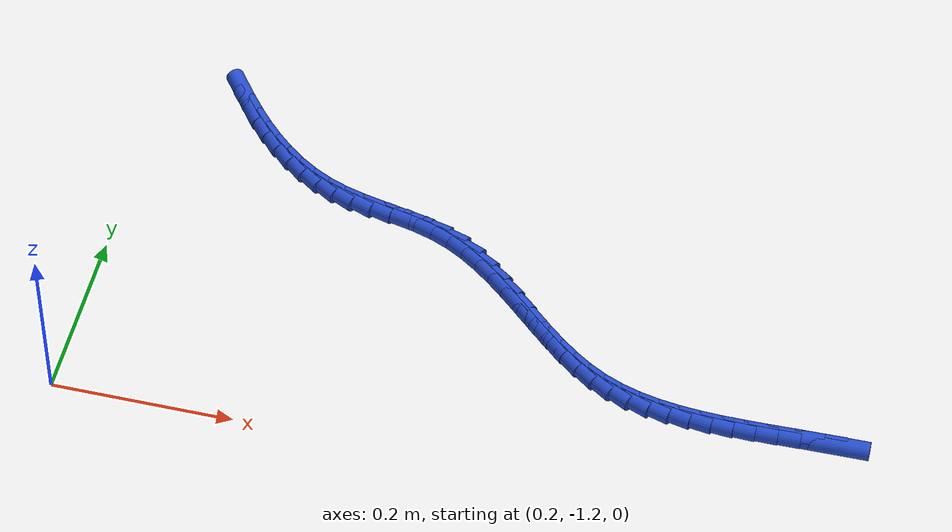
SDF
<sdf version="1.6">
 <world name="default">
  <model name="ground_plane">
   <static>1</static>
   <link name="link">
    <collision name="collision">
     <geometry><plane><normal>0 0 1</normal><size>100 100</size></plane></geometry>
     <surface><friction><ode><mu>100</mu><mu2>50</mu2></ode></friction></surface>
    </collision>
    <visual name="visual">
     <cast_shadows>0</cast_shadows>
     <geometry><plane><normal>0 0 1</normal><size>100 100</size></plane></geometry>
     <material>
      <script><uri>file://media/materials/scripts/gazebo.material</uri><name>Gazebo/WhiteGlow</name></script>
     </material>
    </visual>
   </link>
  </model>
  <model name="line">
   <link name="link_218">
    <pose>1.0204094631899965 -1.0928087757029417 0.01 0 1.57 0.00831767618906607</pose>
    <collision name="collision">
     <geometry><cylinder><radius>0.01</radius><length>0.08</length></cylinder></geometry>
    </collision>
    <visual name="visual">
     <material>
      <script><name>Gazebo/Blue</name><uri>file://media/materials/scripts/gazebo.material</uri></script>
     </material>
     <geometry><cylinder><radius>0.01</radius><length>0.08</length></cylinder></geometry>
    </visual>
   </link>
   <link name="link_219">
    <pose>0.9962284435389615 -1.0930099102327546 0.01 0 1.57 0.01894818879463786</pose>
    <collision name="collision">
     <geometry><cylinder><radius>0.01</radius><length>0.08</length></cylinder></geometry>
    </collision>
    <visual name="visual">
     <material>
      <script><name>Gazebo/Blue</name><uri>file://media/materials/scripts/gazebo.material</uri></script>
     </material>
     <geometry><cylinder><radius>0.01</radius><length>0.08</length></cylinder></geometry>
    </visual>
   </link>
   <link name="link_220">
    <pose>0.972057606819714 -1.093467958629842 0.01 0 1.57 0.0194105196252437</pose>
    <collision name="collision">
     <geometry><cylinder><radius>0.01</radius><length>0.08</length></cylinder></geometry>
    </collision>
    <visual name="visual">
     <material>
      <script><name>Gazebo/Blue</name><uri>file://media/materials/scripts/gazebo.material</uri></script>
     </material>
     <geometry><cylinder><radius>0.01</radius><length>0.08</length></cylinder></geometry>
    </visual>
   </link>
   <link name="link_221">
    <pose>0.9479837671473778 -1.0939353030622492 0.01 0 1.57 0.009586243072264293</pose>
    <collision name="collision">
     <geometry><cylinder><radius>0.01</radius><length>0.08</length></cylinder></geometry>
    </collision>
    <visual name="visual">
     <material>
      <script><name>Gazebo/Blue</name><uri>file://media/materials/scripts/gazebo.material</uri></script>
     </material>
     <geometry><cylinder><radius>0.01</radius><length>0.08</length></cylinder></geometry>
    </visual>
   </link>
   <link name="link_222">
    <pose>0.9240937386370752 -1.094164325698021 0.01 0 1.57 -0.010876941234964146</pose>
    <collision name="collision">
     <geometry><cylinder><radius>0.01</radius><length>0.08</length></cylinder></geometry>
    </collision>
    <visual name="visual">
     <material>
      <script><name>Gazebo/Blue</name><uri>file://media/materials/scripts/gazebo.material</uri></script>
     </material>
     <geometry><cylinder><radius>0.01</radius><length>0.08</length></cylinder></geometry>
    </visual>
   </link>
   <link name="link_223">
    <pose>0.9004743354039301 -1.0939074087052034 0.01 0 1.57 -0.042553437843695266</pose>
    <collision name="collision">
     <geometry><cylinder><radius>0.01</radius><length>0.08</length></cylinder></geometry>
    </collision>
    <visual name="visual">
     <material>
      <script><name>Gazebo/Blue</name><uri>file://media/materials/scripts/gazebo.material</uri></script>
     </material>
     <geometry><cylinder><radius>0.01</radius><length>0.08</length></cylinder></geometry>
    </visual>
   </link>
   <link name="link_224">
    <pose>0.8772123715630656 -1.0929169342518412 0.01 0 1.57 -0.08619464858166259</pose>
    <collision name="collision">
     <geometry><cylinder><radius>0.01</radius><length>0.08</length></cylinder></geometry>
    </collision>
    <visual name="visual">
     <material>
      <script><name>Gazebo/Blue</name><uri>file://media/materials/scripts/gazebo.material</uri></script>
     </material>
     <geometry><cylinder><radius>0.01</radius><length>0.08</length></cylinder></geometry>
    </visual>
   </link>
   <link name="link_225">
    <pose>0.8543946612296048 -1.0909452845059802 0.01 0 1.57 -0.14262853879168322</pose>
    <collision name="collision">
     <geometry><cylinder><radius>0.01</radius><length>0.08</length></cylinder></geometry>
    </collision>
    <visual name="visual">
     <material>
      <script><name>Gazebo/Blue</name><uri>file://media/materials/scripts/gazebo.material</uri></script>
     </material>
     <geometry><cylinder><radius>0.01</radius><length>0.08</length></cylinder></geometry>
    </visual>
   </link>
   <link name="link_226">
    <pose>0.8321080185186707 -1.0877448416356645 0.01 0 1.57 -0.21257310748730246</pose>
    <collision name="collision">
     <geometry><cylinder><radius>0.01</radius><length>0.08</length></cylinder></geometry>
    </collision>
    <visual name="visual">
     <material>
      <script><name>Gazebo/Blue</name><uri>file://media/materials/scripts/gazebo.material</uri></script>
     </material>
     <geometry><cylinder><radius>0.01</radius><length>0.08</length></cylinder></geometry>
    </visual>
   </link>
   <link name="link_227">
    <pose>0.8104392575453867 -1.083067987808941 0.01 0 1.57 -0.29633621166907026</pose>
    <collision name="collision">
     <geometry><cylinder><radius>0.01</radius><length>0.08</length></cylinder></geometry>
    </collision>
    <visual name="visual">
     <material>
      <script><name>Gazebo/Blue</name><uri>file://media/materials/scripts/gazebo.material</uri></script>
     </material>
     <geometry><cylinder><radius>0.01</radius><length>0.08</length></cylinder></geometry>
    </visual>
   </link>
   <link name="link_228">
    <pose>0.7894751924248757 -1.076667105193854 0.01 0 1.57 -0.3934090180678991</pose>
    <collision name="collision">
     <geometry><cylinder><radius>0.01</radius><length>0.08</length></cylinder></geometry>
    </collision>
    <visual name="visual">
     <material>
      <script><name>Gazebo/Blue</name><uri>file://media/materials/scripts/gazebo.material</uri></script>
     </material>
     <geometry><cylinder><radius>0.01</radius><length>0.08</length></cylinder></geometry>
    </visual>
   </link>
   <link name="link_229">
    <pose>0.7693026372722611 -1.0682945759584486 0.01 0 1.57 -0.499503116932192</pose>
    <collision name="collision">
     <geometry><cylinder><radius>0.01</radius><length>0.08</length></cylinder></geometry>
    </collision>
    <visual name="visual">
     <material>
      <script><name>Gazebo/Blue</name><uri>file://media/materials/scripts/gazebo.material</uri></script>
     </material>
     <geometry><cylinder><radius>0.01</radius><length>0.08</length></cylinder></geometry>
    </visual>
   </link>
   <link name="link_230">
    <pose>0.7499874267416878 -1.0577550866839307 0.01 0 1.57 -0.592296394537806</pose>
    <collision name="collision">
     <geometry><cylinder><radius>0.01</radius><length>0.08</length></cylinder></geometry>
    </collision>
    <visual name="visual">
     <material>
      <script><name>Gazebo/Blue</name><uri>file://media/materials/scripts/gazebo.material</uri></script>
     </material>
     <geometry><cylinder><radius>0.01</radius><length>0.08</length></cylinder></geometry>
    </visual>
   </link>
   <link name="link_231">
    <pose>0.7314292525624848 -1.0452675389874588 0.01 0 1.57 -0.6622489783305253</pose>
    <collision name="collision">
     <geometry><cylinder><radius>0.01</radius><length>0.08</length></cylinder></geometry>
    </collision>
    <visual name="visual">
     <material>
      <script><name>Gazebo/Blue</name><uri>file://media/materials/scripts/gazebo.material</uri></script>
     </material>
     <geometry><cylinder><radius>0.01</radius><length>0.08</length></cylinder></geometry>
    </visual>
   </link>
   <link name="link_232">
    <pose>0.7134487676900183 -1.03124788800884 0.01 0 1.57 -0.7107135219159986</pose>
    <collision name="collision">
     <geometry><cylinder><radius>0.01</radius><length>0.08</length></cylinder></geometry>
    </collision>
    <visual name="visual">
     <material>
      <script><name>Gazebo/Blue</name><uri>file://media/materials/scripts/gazebo.material</uri></script>
     </material>
     <geometry><cylinder><radius>0.01</radius><length>0.08</length></cylinder></geometry>
    </visual>
   </link>
   <link name="link_233">
    <pose>0.6958661430662091 -1.0161132906075296 0.01 0 1.57 -0.7392759008463121</pose>
    <collision name="collision">
     <geometry><cylinder><radius>0.01</radius><length>0.08</length></cylinder></geometry>
    </collision>
    <visual name="visual">
     <material>
      <script><name>Gazebo/Blue</name><uri>file://media/materials/scripts/gazebo.material</uri></script>
     </material>
     <geometry><cylinder><radius>0.01</radius><length>0.08</length></cylinder></geometry>
    </visual>
   </link>
   <link name="link_234">
    <pose>0.6785015496329766 -1.0002809036429823 0.01 0 1.57 -0.7491283999998812</pose>
    <collision name="collision">
     <geometry><cylinder><radius>0.01</radius><length>0.08</length></cylinder></geometry>
    </collision>
    <visual name="visual">
     <material>
      <script><name>Gazebo/Blue</name><uri>file://media/materials/scripts/gazebo.material</uri></script>
     </material>
     <geometry><cylinder><radius>0.01</radius><length>0.08</length></cylinder></geometry>
    </visual>
   </link>
   <link name="link_235">
    <pose>0.6611751583322409 -0.9841678839746527 0.01 0 1.57 -0.7408307619829201</pose>
    <collision name="collision">
     <geometry><cylinder><radius>0.01</radius><length>0.08</length></cylinder></geometry>
    </collision>
    <visual name="visual">
     <material>
      <script><name>Gazebo/Blue</name><uri>file://media/materials/scripts/gazebo.material</uri></script>
     </material>
     <geometry><cylinder><radius>0.01</radius><length>0.08</length></cylinder></geometry>
    </visual>
   </link>
   <link name="link_236">
    <pose>0.6437071401059226 -0.9681913884619964 0.01 0 1.57 -0.7142598537284502</pose>
    <collision name="collision">
     <geometry><cylinder><radius>0.01</radius><length>0.08</length></cylinder></geometry>
    </collision>
    <visual name="visual">
     <material>
      <script><name>Gazebo/Blue</name><uri>file://media/materials/scripts/gazebo.material</uri></script>
     </material>
     <geometry><cylinder><radius>0.01</radius><length>0.08</length></cylinder></geometry>
    </visual>
   </link>
   <link name="link_237">
    <pose>0.6259176658959416 -0.9527685739644679 0.01 0 1.57 -0.6686902081531628</pose>
    <collision name="collision">
     <geometry><cylinder><radius>0.01</radius><length>0.08</length></cylinder></geometry>
    </collision>
    <visual name="visual">
     <material>
      <script><name>Gazebo/Blue</name><uri>file://media/materials/scripts/gazebo.material</uri></script>
     </material>
     <geometry><cylinder><radius>0.01</radius><length>0.08</length></cylinder></geometry>
    </visual>
   </link>
   <link name="link_238">
    <pose>0.6076269066442178 -0.9383165973415224 0.01 0 1.57 -0.6030321208310914</pose>
    <collision name="collision">
     <geometry><cylinder><radius>0.01</radius><length>0.08</length></cylinder></geometry>
    </collision>
    <visual name="visual">
     <material>
      <script><name>Gazebo/Blue</name><uri>file://media/materials/scripts/gazebo.material</uri></script>
     </material>
     <geometry><cylinder><radius>0.01</radius><length>0.08</length></cylinder></geometry>
    </visual>
   </link>
   <link name="link_239">
    <pose>0.5886550332926719 -0.9252526154526151 0.01 0 1.57 -0.5163209300949088</pose>
    <collision name="collision">
     <geometry><cylinder><radius>0.01</radius><length>0.08</length></cylinder></geometry>
    </collision>
    <visual name="visual">
     <material>
      <script><name>Gazebo/Blue</name><uri>file://media/materials/scripts/gazebo.material</uri></script>
     </material>
     <geometry><cylinder><radius>0.01</radius><length>0.08</length></cylinder></geometry>
    </visual>
   </link>
   <link name="link_240">
    <pose>0.5688222167832235 -0.9139937851572006 0.01 0 1.57 -0.4089094033319218</pose>
    <collision name="collision">
     <geometry><cylinder><radius>0.01</radius><length>0.08</length></cylinder></geometry>
    </collision>
    <visual name="visual">
     <material>
      <script><name>Gazebo/Blue</name><uri>file://media/materials/scripts/gazebo.material</uri></script>
     </material>
     <geometry><cylinder><radius>0.01</radius><length>0.08</length></cylinder></geometry>
    </visual>
   </link>
   <link name="link_241">
    <pose>0.5479520307882029 -0.9049499988651092 0.01 0 1.57 -0.30448301328939137</pose>
    <collision name="collision">
     <geometry><cylinder><radius>0.01</radius><length>0.08</length></cylinder></geometry>
    </collision>
    <visual name="visual">
     <material>
      <script><name>Gazebo/Blue</name><uri>file://media/materials/scripts/gazebo.material</uri></script>
     </material>
     <geometry><cylinder><radius>0.01</radius><length>0.08</length></cylinder></geometry>
    </visual>
   </link>
   <link name="link_242">
    <pose>0.5260808392293508 -0.8980768655545237 0.01 0 1.57 -0.23813114588604736</pose>
    <collision name="collision">
     <geometry><cylinder><radius>0.01</radius><length>0.08</length></cylinder></geometry>
    </collision>
    <visual name="visual">
     <material>
      <script><name>Gazebo/Blue</name><uri>file://media/materials/scripts/gazebo.material</uri></script>
     </material>
     <geometry><cylinder><radius>0.01</radius><length>0.08</length></cylinder></geometry>
    </visual>
   </link>
   <link name="link_243">
    <pose>0.5035798891190354 -0.8926150561835264 0.01 0 1.57 -0.21117190987749357</pose>
    <collision name="collision">
     <geometry><cylinder><radius>0.01</radius><length>0.08</length></cylinder></geometry>
    </collision>
    <visual name="visual">
     <material>
      <script><name>Gazebo/Blue</name><uri>file://media/materials/scripts/gazebo.material</uri></script>
     </material>
     <geometry><cylinder><radius>0.01</radius><length>0.08</length></cylinder></geometry>
    </visual>
   </link>
   <link name="link_244">
    <pose>0.48084983402521375 -0.8877424619962655 0.01 0 1.57 -0.22257244528090303</pose>
    <collision name="collision">
     <geometry><cylinder><radius>0.01</radius><length>0.08</length></cylinder></geometry>
    </collision>
    <visual name="visual">
     <material>
      <script><name>Gazebo/Blue</name><uri>file://media/materials/scripts/gazebo.material</uri></script>
     </material>
     <geometry><cylinder><radius>0.01</radius><length>0.08</length></cylinder></geometry>
    </visual>
   </link>
   <link name="link_245">
    <pose>0.458291327515843 -0.8826369742368892 0.01 0 1.57 -0.2731911004247432</pose>
    <collision name="collision">
     <geometry><cylinder><radius>0.01</radius><length>0.08</length></cylinder></geometry>
    </collision>
    <visual name="visual">
     <material>
      <script><name>Gazebo/Blue</name><uri>file://media/materials/scripts/gazebo.material</uri></script>
     </material>
     <geometry><cylinder><radius>0.01</radius><length>0.08</length></cylinder></geometry>
    </visual>
   </link>
   <link name="link_246">
    <pose>0.43630502315888026 -0.8764764841495458 0.01 0 1.57 -0.3640109757729176</pose>
    <collision name="collision">
     <geometry><cylinder><radius>0.01</radius><length>0.08</length></cylinder></geometry>
    </collision>
    <visual name="visual">
     <material>
      <script><name>Gazebo/Blue</name><uri>file://media/materials/scripts/gazebo.material</uri></script>
     </material>
     <geometry><cylinder><radius>0.01</radius><length>0.08</length></cylinder></geometry>
    </visual>
   </link>
   <link name="link_247">
    <pose>0.41527903194610905 -0.8684658117857121 0.01 0 1.57 -0.4708058681477378</pose>
    <collision name="collision">
     <geometry><cylinder><radius>0.01</radius><length>0.08</length></cylinder></geometry>
    </collision>
    <visual name="visual">
     <material>
      <script><name>Gazebo/Blue</name><uri>file://media/materials/scripts/gazebo.material</uri></script>
     </material>
     <geometry><cylinder><radius>0.01</radius><length>0.08</length></cylinder></geometry>
    </visual>
   </link>
   <link name="link_248">
    <pose>0.39536029357452934 -0.8583275699724868 0.01 0 1.57 -0.5690026498437956</pose>
    <collision name="collision">
     <geometry><cylinder><radius>0.01</radius><length>0.08</length></cylinder></geometry>
    </collision>
    <visual name="visual">
     <material>
      <script><name>Gazebo/Blue</name><uri>file://media/materials/scripts/gazebo.material</uri></script>
     </material>
     <geometry><cylinder><radius>0.01</radius><length>0.08</length></cylinder></geometry>
    </visual>
   </link>
   <link name="link_249">
    <pose>0.3764782541413072 -0.8462513284973199 0.01 0 1.57 -0.6564135514776273</pose>
    <collision name="collision">
     <geometry><cylinder><radius>0.01</radius><length>0.08</length></cylinder></geometry>
    </collision>
    <visual name="visual">
     <material>
      <script><name>Gazebo/Blue</name><uri>file://media/materials/scripts/gazebo.material</uri></script>
     </material>
     <geometry><cylinder><radius>0.01</radius><length>0.08</length></cylinder></geometry>
    </visual>
   </link>
   <link name="link_250">
    <pose>0.35855456856461315 -0.8324433847445438 0.01 0 1.57 -0.7326218539761026</pose>
    <collision name="collision">
     <geometry><cylinder><radius>0.01</radius><length>0.08</length></cylinder></geometry>
    </collision>
    <visual name="visual">
     <material>
      <script><name>Gazebo/Blue</name><uri>file://media/materials/scripts/gazebo.material</uri></script>
     </material>
     <geometry><cylinder><radius>0.01</radius><length>0.08</length></cylinder></geometry>
    </visual>
   </link>
   <link name="link_251">
    <pose>0.3415108917626169 -0.8171100360984914 0.01 0 1.57 -0.7978750860061894</pose>
    <collision name="collision">
     <geometry><cylinder><radius>0.01</radius><length>0.08</length></cylinder></geometry>
    </collision>
    <visual name="visual">
     <material>
      <script><name>Gazebo/Blue</name><uri>file://media/materials/scripts/gazebo.material</uri></script>
     </material>
     <geometry><cylinder><radius>0.01</radius><length>0.08</length></cylinder></geometry>
    </visual>
   </link>
   <link name="link_252">
    <pose>0.32526887865348814 -0.8004575799434956 0.01 0 1.57 -0.8527930687561492</pose>
    <collision name="collision">
     <geometry><cylinder><radius>0.01</radius><length>0.08</length></cylinder></geometry>
    </collision>
    <visual name="visual">
     <material>
      <script><name>Gazebo/Blue</name><uri>file://media/materials/scripts/gazebo.material</uri></script>
     </material>
     <geometry><cylinder><radius>0.01</radius><length>0.08</length></cylinder></geometry>
    </visual>
   </link>
   <link name="link_253">
    <pose>0.3097501841553966 -0.7826923136638881 0.01 0 1.57 -0.8981391457727979</pose>
    <collision name="collision">
     <geometry><cylinder><radius>0.01</radius><length>0.08</length></cylinder></geometry>
    </collision>
    <visual name="visual">
     <material>
      <script><name>Gazebo/Blue</name><uri>file://media/materials/scripts/gazebo.material</uri></script>
     </material>
     <geometry><cylinder><radius>0.01</radius><length>0.08</length></cylinder></geometry>
    </visual>
   </link>
   <link name="link_254">
    <pose>0.2948764631865122 -0.7640205346440021 0.01 0 1.57 -0.9346667191670656</pose>
    <collision name="collision">
     <geometry><cylinder><radius>0.01</radius><length>0.08</length></cylinder></geometry>
    </collision>
    <visual name="visual">
     <material>
      <script><name>Gazebo/Blue</name><uri>file://media/materials/scripts/gazebo.material</uri></script>
     </material>
     <geometry><cylinder><radius>0.01</radius><length>0.08</length></cylinder></geometry>
    </visual>
   </link>
  </model>
 </world>
</sdf>
